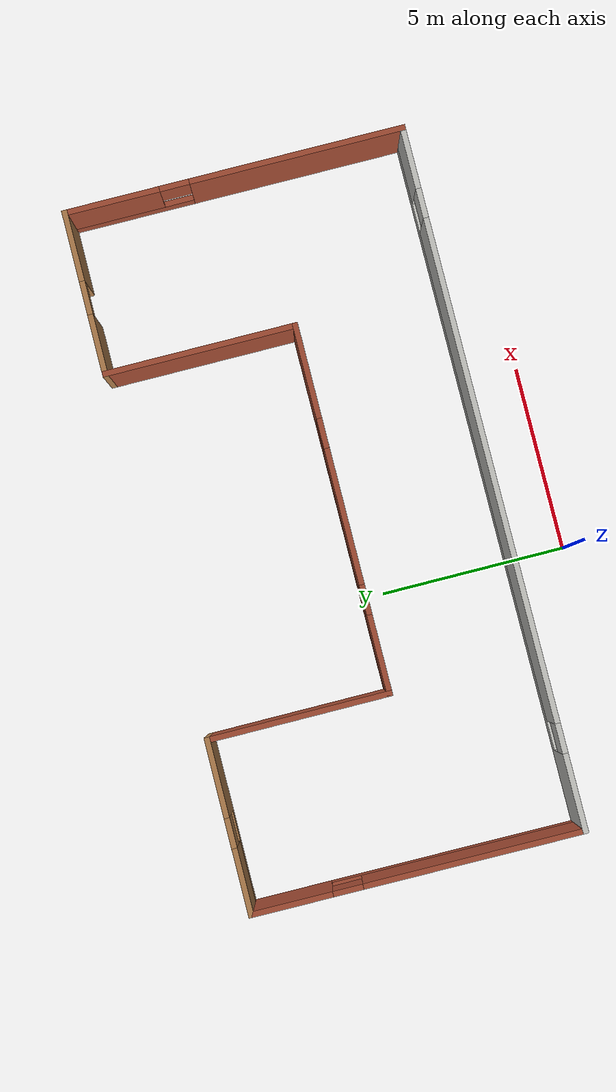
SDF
<?xml version='1.0'?>
<sdf version='1.6'>
  <model name='building'>
    <pose frame=''>2.21665 6.11467 0 0 -0 0</pose>
    <link name='Wall_0'>
      <pose frame=''>0.000211 -4.54979 0 0 -0 0</pose>
      <visual name='Wall_0_Visual_0'>
        <pose frame=''>-8.44191 0 1.25 0 -0 0</pose>
        <geometry>
          <box>
            <size>2.11618 0.15 2.5</size>
          </box>
        </geometry>
        <material>
          <script>
            <uri>file://media/materials/scripts/gazebo.material</uri>
            <name>Gazebo/CeilingTiled</name>
          </script>
          <ambient>1 1 1 1</ambient>
        </material>
        <meta>
          <layer>0</layer>
        </meta>
      </visual>
      <collision name='Wall_0_Collision_0'>
        <geometry>
          <box>
            <size>2.11618 0.15 2.5</size>
          </box>
        </geometry>
        <pose frame=''>-8.44191 0 1.25 0 -0 0</pose>
      </collision>
      <visual name='Wall_0_Visual_1'>
        <pose frame=''>1.05809 0 0.25 0 -0 0</pose>
        <geometry>
          <box>
            <size>16.8838 0.15 0.5</size>
          </box>
        </geometry>
        <material>
          <script>
            <uri>file://media/materials/scripts/gazebo.material</uri>
            <name>Gazebo/CeilingTiled</name>
          </script>
          <ambient>1 1 1 1</ambient>
        </material>
        <meta>
          <layer>0</layer>
        </meta>
      </visual>
      <collision name='Wall_0_Collision_1'>
        <geometry>
          <box>
            <size>16.8838 0.15 0.5</size>
          </box>
        </geometry>
        <pose frame=''>1.05809 0 0.25 0 -0 0</pose>
      </collision>
      <visual name='Wall_0_Visual_2'>
        <pose frame=''>0.193942 0 1.5 0 -0 0</pose>
        <geometry>
          <box>
            <size>13.5555 0.15 2</size>
          </box>
        </geometry>
        <material>
          <script>
            <uri>file://media/materials/scripts/gazebo.material</uri>
            <name>Gazebo/CeilingTiled</name>
          </script>
          <ambient>1 1 1 1</ambient>
        </material>
        <meta>
          <layer>0</layer>
        </meta>
      </visual>
      <collision name='Wall_0_Collision_2'>
        <geometry>
          <box>
            <size>13.5555 0.15 2</size>
          </box>
        </geometry>
        <pose frame=''>0.193942 0 1.5 0 -0 0</pose>
      </collision>
      <visual name='Wall_0_Visual_3'>
        <pose frame=''>8.63585 0 1.5 0 -0 0</pose>
        <geometry>
          <box>
            <size>1.72829 0.15 2</size>
          </box>
        </geometry>
        <material>
          <script>
            <uri>file://media/materials/scripts/gazebo.material</uri>
            <name>Gazebo/CeilingTiled</name>
          </script>
          <ambient>1 1 1 1</ambient>
        </material>
        <meta>
          <layer>0</layer>
        </meta>
      </visual>
      <collision name='Wall_0_Collision_3'>
        <geometry>
          <box>
            <size>1.72829 0.15 2</size>
          </box>
        </geometry>
        <pose frame=''>8.63585 0 1.5 0 -0 0</pose>
      </collision>
      <visual name='Wall_0_Visual_4'>
        <pose frame=''>-6.98382 0 1.9 0 -0 0</pose>
        <geometry>
          <box>
            <size>0.8 0.15 1.2</size>
          </box>
        </geometry>
        <material>
          <script>
            <uri>file://media/materials/scripts/gazebo.material</uri>
            <name>Gazebo/CeilingTiled</name>
          </script>
          <ambient>1 1 1 1</ambient>
        </material>
        <meta>
          <layer>0</layer>
        </meta>
      </visual>
      <collision name='Wall_0_Collision_4'>
        <geometry>
          <box>
            <size>0.8 0.15 1.2</size>
          </box>
        </geometry>
        <pose frame=''>-6.98382 0 1.9 0 -0 0</pose>
      </collision>
      <visual name='Wall_0_Visual_5'>
        <pose frame=''>7.37171 0 1.9 0 -0 0</pose>
        <geometry>
          <box>
            <size>0.8 0.15 1.2</size>
          </box>
        </geometry>
        <material>
          <script>
            <uri>file://media/materials/scripts/gazebo.material</uri>
            <name>Gazebo/CeilingTiled</name>
          </script>
          <ambient>1 1 1 1</ambient>
        </material>
        <meta>
          <layer>0</layer>
        </meta>
      </visual>
      <collision name='Wall_0_Collision_5'>
        <geometry>
          <box>
            <size>0.8 0.15 1.2</size>
          </box>
        </geometry>
        <pose frame=''>7.37171 0 1.9 0 -0 0</pose>
      </collision>
    </link>
    <link name='Wall_1'>
      <pose frame=''>9.42521 0.000211 0 0 -0 1.5708</pose>
      <visual name='Wall_1_Visual_0'>
        <pose frame=''>-1.70833 0 1.25 0 -0 0</pose>
        <geometry>
          <box>
            <size>5.83334 0.15 2.5</size>
          </box>
        </geometry>
        <material>
          <script>
            <uri>file://media/materials/scripts/gazebo.material</uri>
            <name>Gazebo/Bricks</name>
          </script>
          <ambient>1 1 1 1</ambient>
        </material>
        <meta>
          <layer>0</layer>
        </meta>
      </visual>
      <collision name='Wall_1_Collision_0'>
        <geometry>
          <box>
            <size>5.83334 0.15 2.5</size>
          </box>
        </geometry>
        <pose frame=''>-1.70833 0 1.25 0 -0 0</pose>
      </collision>
      <visual name='Wall_1_Visual_1'>
        <pose frame=''>2.91667 0 0.25 0 -0 0</pose>
        <geometry>
          <box>
            <size>3.41666 0.15 0.5</size>
          </box>
        </geometry>
        <material>
          <script>
            <uri>file://media/materials/scripts/gazebo.material</uri>
            <name>Gazebo/Bricks</name>
          </script>
          <ambient>1 1 1 1</ambient>
        </material>
        <meta>
          <layer>0</layer>
        </meta>
      </visual>
      <collision name='Wall_1_Collision_1'>
        <geometry>
          <box>
            <size>3.41666 0.15 0.5</size>
          </box>
        </geometry>
        <pose frame=''>2.91667 0 0.25 0 -0 0</pose>
      </collision>
      <visual name='Wall_1_Visual_2'>
        <pose frame=''>3.31667 0 1.5 0 -0 0</pose>
        <geometry>
          <box>
            <size>2.61666 0.15 2</size>
          </box>
        </geometry>
        <material>
          <script>
            <uri>file://media/materials/scripts/gazebo.material</uri>
            <name>Gazebo/Bricks</name>
          </script>
          <ambient>1 1 1 1</ambient>
        </material>
        <meta>
          <layer>0</layer>
        </meta>
      </visual>
      <collision name='Wall_1_Collision_2'>
        <geometry>
          <box>
            <size>2.61666 0.15 2</size>
          </box>
        </geometry>
        <pose frame=''>3.31667 0 1.5 0 -0 0</pose>
      </collision>
      <visual name='Wall_1_Visual_3'>
        <pose frame=''>1.60834 0 1.9 0 -0 0</pose>
        <geometry>
          <box>
            <size>0.8 0.15 1.2</size>
          </box>
        </geometry>
        <material>
          <script>
            <uri>file://media/materials/scripts/gazebo.material</uri>
            <name>Gazebo/Bricks</name>
          </script>
          <ambient>1 1 1 1</ambient>
        </material>
        <meta>
          <layer>0</layer>
        </meta>
      </visual>
      <collision name='Wall_1_Collision_3'>
        <geometry>
          <box>
            <size>0.8 0.15 1.2</size>
          </box>
        </geometry>
        <pose frame=''>1.60834 0 1.9 0 -0 0</pose>
      </collision>
    </link>
    <link name='Wall_2'>
      <pose frame=''>7.25021 4.55021 0 0 -0 3.14159</pose>
      <visual name='Wall_2_Visual_0'>
        <pose frame=''>-1.2871 0 1.25 0 -0 0</pose>
        <geometry>
          <box>
            <size>1.9258 0.15 2.5</size>
          </box>
        </geometry>
        <material>
          <script>
            <uri>file://media/materials/scripts/gazebo.material</uri>
            <name>Gazebo/Wood</name>
          </script>
          <ambient>1 1 1 1</ambient>
        </material>
        <meta>
          <layer>0</layer>
        </meta>
      </visual>
      <collision name='Wall_2_Collision_0'>
        <geometry>
          <box>
            <size>1.9258 0.15 2.5</size>
          </box>
        </geometry>
        <pose frame=''>-1.2871 0 1.25 0 -0 0</pose>
      </collision>
      <visual name='Wall_2_Visual_1'>
        <pose frame=''>1.4129 0 1.25 0 -0 0</pose>
        <geometry>
          <box>
            <size>1.6742 0.15 2.5</size>
          </box>
        </geometry>
        <material>
          <script>
            <uri>file://media/materials/scripts/gazebo.material</uri>
            <name>Gazebo/Wood</name>
          </script>
          <ambient>1 1 1 1</ambient>
        </material>
        <meta>
          <layer>0</layer>
        </meta>
      </visual>
      <collision name='Wall_2_Collision_1'>
        <geometry>
          <box>
            <size>1.6742 0.15 2.5</size>
          </box>
        </geometry>
        <pose frame=''>1.4129 0 1.25 0 -0 0</pose>
      </collision>
      <visual name='Wall_2_Visual_2'>
        <pose frame=''>0.125804 0 2.25 0 -0 0</pose>
        <geometry>
          <box>
            <size>0.9 0.15 0.5</size>
          </box>
        </geometry>
        <material>
          <script>
            <uri>file://media/materials/scripts/gazebo.material</uri>
            <name>Gazebo/Wood</name>
          </script>
          <ambient>1 1 1 1</ambient>
        </material>
        <meta>
          <layer>0</layer>
        </meta>
      </visual>
      <collision name='Wall_2_Collision_2'>
        <geometry>
          <box>
            <size>0.9 0.15 0.5</size>
          </box>
        </geometry>
        <pose frame=''>0.125804 0 2.25 0 -0 0</pose>
      </collision>
    </link>
    <link name='Wall_3'>
      <collision name='Wall_3_Collision'>
        <geometry>
          <box>
            <size>5.25 0.15 2.5</size>
          </box>
        </geometry>
        <pose frame=''>0 0 1.25 0 -0 0</pose>
      </collision>
      <visual name='Wall_3_Visual'>
        <pose frame=''>0 0 1.25 0 -0 0</pose>
        <geometry>
          <box>
            <size>5.25 0.15 2.5</size>
          </box>
        </geometry>
        <material>
          <script>
            <uri>file://media/materials/scripts/gazebo.material</uri>
            <name>Gazebo/Bricks</name>
          </script>
          <ambient>1 1 1 1</ambient>
        </material>
        <meta>
          <layer>0</layer>
        </meta>
      </visual>
      <pose frame=''>5.07521 2.00021 0 0 0 -1.5708</pose>
    </link>
    <link name='Wall_4'>
      <pose frame=''>0.150211 -0.549788 0 0 -0 3.14159</pose>
      <visual name='Wall_4_Visual_0'>
        <pose frame=''>-3.71201 0 1.25 0 -0 0</pose>
        <geometry>
          <box>
            <size>2.57599 0.15 2.5</size>
          </box>
        </geometry>
        <material>
          <script>
            <uri>file://media/materials/scripts/gazebo.material</uri>
            <name>Gazebo/Bricks</name>
          </script>
          <ambient>1 1 1 1</ambient>
        </material>
        <meta>
          <layer>0</layer>
        </meta>
      </visual>
      <collision name='Wall_4_Collision_0'>
        <geometry>
          <box>
            <size>2.57599 0.15 2.5</size>
          </box>
        </geometry>
        <pose frame=''>-3.71201 0 1.25 0 -0 0</pose>
      </collision>
      <visual name='Wall_4_Visual_1'>
        <pose frame=''>1.28799 0 0.25 0 -0 0</pose>
        <geometry>
          <box>
            <size>7.42401 0.15 0.5</size>
          </box>
        </geometry>
        <material>
          <script>
            <uri>file://media/materials/scripts/gazebo.material</uri>
            <name>Gazebo/Bricks</name>
          </script>
          <ambient>1 1 1 1</ambient>
        </material>
        <meta>
          <layer>0</layer>
        </meta>
      </visual>
      <collision name='Wall_4_Collision_1'>
        <geometry>
          <box>
            <size>7.42401 0.15 0.5</size>
          </box>
        </geometry>
        <pose frame=''>1.28799 0 0.25 0 -0 0</pose>
      </collision>
      <visual name='Wall_4_Visual_2'>
        <pose frame=''>0.203567 0 1.5 0 -0 0</pose>
        <geometry>
          <box>
            <size>3.65516 0.15 2</size>
          </box>
        </geometry>
        <material>
          <script>
            <uri>file://media/materials/scripts/gazebo.material</uri>
            <name>Gazebo/Bricks</name>
          </script>
          <ambient>1 1 1 1</ambient>
        </material>
        <meta>
          <layer>0</layer>
        </meta>
      </visual>
      <collision name='Wall_4_Collision_2'>
        <geometry>
          <box>
            <size>3.65516 0.15 2</size>
          </box>
        </geometry>
        <pose frame=''>0.203567 0 1.5 0 -0 0</pose>
      </collision>
      <visual name='Wall_4_Visual_3'>
        <pose frame=''>3.91557 0 1.5 0 -0 0</pose>
        <geometry>
          <box>
            <size>2.16885 0.15 2</size>
          </box>
        </geometry>
        <material>
          <script>
            <uri>file://media/materials/scripts/gazebo.material</uri>
            <name>Gazebo/Bricks</name>
          </script>
          <ambient>1 1 1 1</ambient>
        </material>
        <meta>
          <layer>0</layer>
        </meta>
      </visual>
      <collision name='Wall_4_Collision_3'>
        <geometry>
          <box>
            <size>2.16885 0.15 2</size>
          </box>
        </geometry>
        <pose frame=''>3.91557 0 1.5 0 -0 0</pose>
      </collision>
      <visual name='Wall_4_Visual_4'>
        <pose frame=''>-2.02401 0 1.9 0 -0 0</pose>
        <geometry>
          <box>
            <size>0.8 0.15 1.2</size>
          </box>
        </geometry>
        <material>
          <script>
            <uri>file://media/materials/scripts/gazebo.material</uri>
            <name>Gazebo/Bricks</name>
          </script>
          <ambient>1 1 1 1</ambient>
        </material>
        <meta>
          <layer>0</layer>
        </meta>
      </visual>
      <collision name='Wall_4_Collision_4'>
        <geometry>
          <box>
            <size>0.8 0.15 1.2</size>
          </box>
        </geometry>
        <pose frame=''>-2.02401 0 1.9 0 -0 0</pose>
      </collision>
      <visual name='Wall_4_Visual_5'>
        <pose frame=''>2.43115 0 1.9 0 -0 0</pose>
        <geometry>
          <box>
            <size>0.8 0.15 1.2</size>
          </box>
        </geometry>
        <material>
          <script>
            <uri>file://media/materials/scripts/gazebo.material</uri>
            <name>Gazebo/Bricks</name>
          </script>
          <ambient>1 1 1 1</ambient>
        </material>
        <meta>
          <layer>0</layer>
        </meta>
      </visual>
      <collision name='Wall_4_Collision_5'>
        <geometry>
          <box>
            <size>0.8 0.15 1.2</size>
          </box>
        </geometry>
        <pose frame=''>2.43115 0 1.9 0 -0 0</pose>
      </collision>
    </link>
    <link name='Wall_5'>
      <collision name='Wall_5_Collision'>
        <geometry>
          <box>
            <size>5 0.15 2.5</size>
          </box>
        </geometry>
        <pose frame=''>0 0 1.25 0 -0 0</pose>
      </collision>
      <visual name='Wall_5_Visual'>
        <pose frame=''>0 0 1.25 0 -0 0</pose>
        <geometry>
          <box>
            <size>5 0.15 2.5</size>
          </box>
        </geometry>
        <material>
          <script>
            <uri>file://media/materials/scripts/gazebo.material</uri>
            <name>Gazebo/Bricks</name>
          </script>
          <ambient>1 1 1 1</ambient>
        </material>
        <meta>
          <layer>0</layer>
        </meta>
      </visual>
      <pose frame=''>-4.77479 1.87521 0 0 -0 1.5708</pose>
    </link>
    <link name='Wall_6'>
      <pose frame=''>-7.07479 4.30021 0 0 -0 3.14159</pose>
      <visual name='Wall_6_Visual_0'>
        <pose frame=''>-1.30933 0 1.25 0 -0 0</pose>
        <geometry>
          <box>
            <size>2.13133 0.15 2.5</size>
          </box>
        </geometry>
        <material>
          <script>
            <uri>file://media/materials/scripts/gazebo.material</uri>
            <name>Gazebo/Wood</name>
          </script>
          <ambient>1 1 1 1</ambient>
        </material>
        <meta>
          <layer>0</layer>
        </meta>
      </visual>
      <collision name='Wall_6_Collision_0'>
        <geometry>
          <box>
            <size>2.13133 0.15 2.5</size>
          </box>
        </geometry>
        <pose frame=''>-1.30933 0 1.25 0 -0 0</pose>
      </collision>
      <visual name='Wall_6_Visual_1'>
        <pose frame=''>1.06567 0 0.25 0 -0 0</pose>
        <geometry>
          <box>
            <size>2.61867 0.15 0.5</size>
          </box>
        </geometry>
        <material>
          <script>
            <uri>file://media/materials/scripts/gazebo.material</uri>
            <name>Gazebo/Wood</name>
          </script>
          <ambient>1 1 1 1</ambient>
        </material>
        <meta>
          <layer>0</layer>
        </meta>
      </visual>
      <collision name='Wall_6_Collision_1'>
        <geometry>
          <box>
            <size>2.61867 0.15 0.5</size>
          </box>
        </geometry>
        <pose frame=''>1.06567 0 0.25 0 -0 0</pose>
      </collision>
      <visual name='Wall_6_Visual_2'>
        <pose frame=''>1.46566 0 1.5 0 -0 0</pose>
        <geometry>
          <box>
            <size>1.81867 0.15 2</size>
          </box>
        </geometry>
        <material>
          <script>
            <uri>file://media/materials/scripts/gazebo.material</uri>
            <name>Gazebo/Wood</name>
          </script>
          <ambient>1 1 1 1</ambient>
        </material>
        <meta>
          <layer>0</layer>
        </meta>
      </visual>
      <collision name='Wall_6_Collision_2'>
        <geometry>
          <box>
            <size>1.81867 0.15 2</size>
          </box>
        </geometry>
        <pose frame=''>1.46566 0 1.5 0 -0 0</pose>
      </collision>
      <visual name='Wall_6_Visual_3'>
        <pose frame=''>0.15633 0 1.9 0 -0 0</pose>
        <geometry>
          <box>
            <size>0.8 0.15 1.2</size>
          </box>
        </geometry>
        <material>
          <script>
            <uri>file://media/materials/scripts/gazebo.material</uri>
            <name>Gazebo/Wood</name>
          </script>
          <ambient>1 1 1 1</ambient>
        </material>
        <meta>
          <layer>0</layer>
        </meta>
      </visual>
      <collision name='Wall_6_Collision_3'>
        <geometry>
          <box>
            <size>0.8 0.15 1.2</size>
          </box>
        </geometry>
        <pose frame=''>0.15633 0 1.9 0 -0 0</pose>
      </collision>
    </link>
    <link name='Wall_7'>
      <pose frame=''>-9.39979 -0.124789 0 0 0 -1.57645</pose>
      <visual name='Wall_7_Visual_0'>
        <pose frame=''>-3.3784 0 1.25 0 -0 0</pose>
        <geometry>
          <box>
            <size>2.24334 0.15 2.5</size>
          </box>
        </geometry>
        <material>
          <script>
            <uri>file://media/materials/scripts/gazebo.material</uri>
            <name>Gazebo/Bricks</name>
          </script>
          <ambient>1 1 1 1</ambient>
        </material>
        <meta>
          <layer>0</layer>
        </meta>
      </visual>
      <collision name='Wall_7_Collision_0'>
        <geometry>
          <box>
            <size>2.24334 0.15 2.5</size>
          </box>
        </geometry>
        <pose frame=''>-3.3784 0 1.25 0 -0 0</pose>
      </collision>
      <visual name='Wall_7_Visual_1'>
        <pose frame=''>1.12167 0 0.25 0 -0 0</pose>
        <geometry>
          <box>
            <size>6.7568 0.15 0.5</size>
          </box>
        </geometry>
        <material>
          <script>
            <uri>file://media/materials/scripts/gazebo.material</uri>
            <name>Gazebo/Bricks</name>
          </script>
          <ambient>1 1 1 1</ambient>
        </material>
        <meta>
          <layer>0</layer>
        </meta>
      </visual>
      <collision name='Wall_7_Collision_1'>
        <geometry>
          <box>
            <size>6.7568 0.15 0.5</size>
          </box>
        </geometry>
        <pose frame=''>1.12167 0 0.25 0 -0 0</pose>
      </collision>
      <visual name='Wall_7_Visual_2'>
        <pose frame=''>1.52167 0 1.5 0 -0 0</pose>
        <geometry>
          <box>
            <size>5.95681 0.15 2</size>
          </box>
        </geometry>
        <material>
          <script>
            <uri>file://media/materials/scripts/gazebo.material</uri>
            <name>Gazebo/Bricks</name>
          </script>
          <ambient>1 1 1 1</ambient>
        </material>
        <meta>
          <layer>0</layer>
        </meta>
      </visual>
      <collision name='Wall_7_Collision_2'>
        <geometry>
          <box>
            <size>5.95681 0.15 2</size>
          </box>
        </geometry>
        <pose frame=''>1.52167 0 1.5 0 -0 0</pose>
      </collision>
      <visual name='Wall_7_Visual_3'>
        <pose frame=''>-1.85673 0 1.9 0 -0 0</pose>
        <geometry>
          <box>
            <size>0.8 0.15 1.2</size>
          </box>
        </geometry>
        <material>
          <script>
            <uri>file://media/materials/scripts/gazebo.material</uri>
            <name>Gazebo/Bricks</name>
          </script>
          <ambient>1 1 1 1</ambient>
        </material>
        <meta>
          <layer>0</layer>
        </meta>
      </visual>
      <collision name='Wall_7_Collision_3'>
        <geometry>
          <box>
            <size>0.8 0.15 1.2</size>
          </box>
        </geometry>
        <pose frame=''>-1.85673 0 1.9 0 -0 0</pose>
      </collision>
    </link>
    <static>1</static>
  </model>
</sdf>
